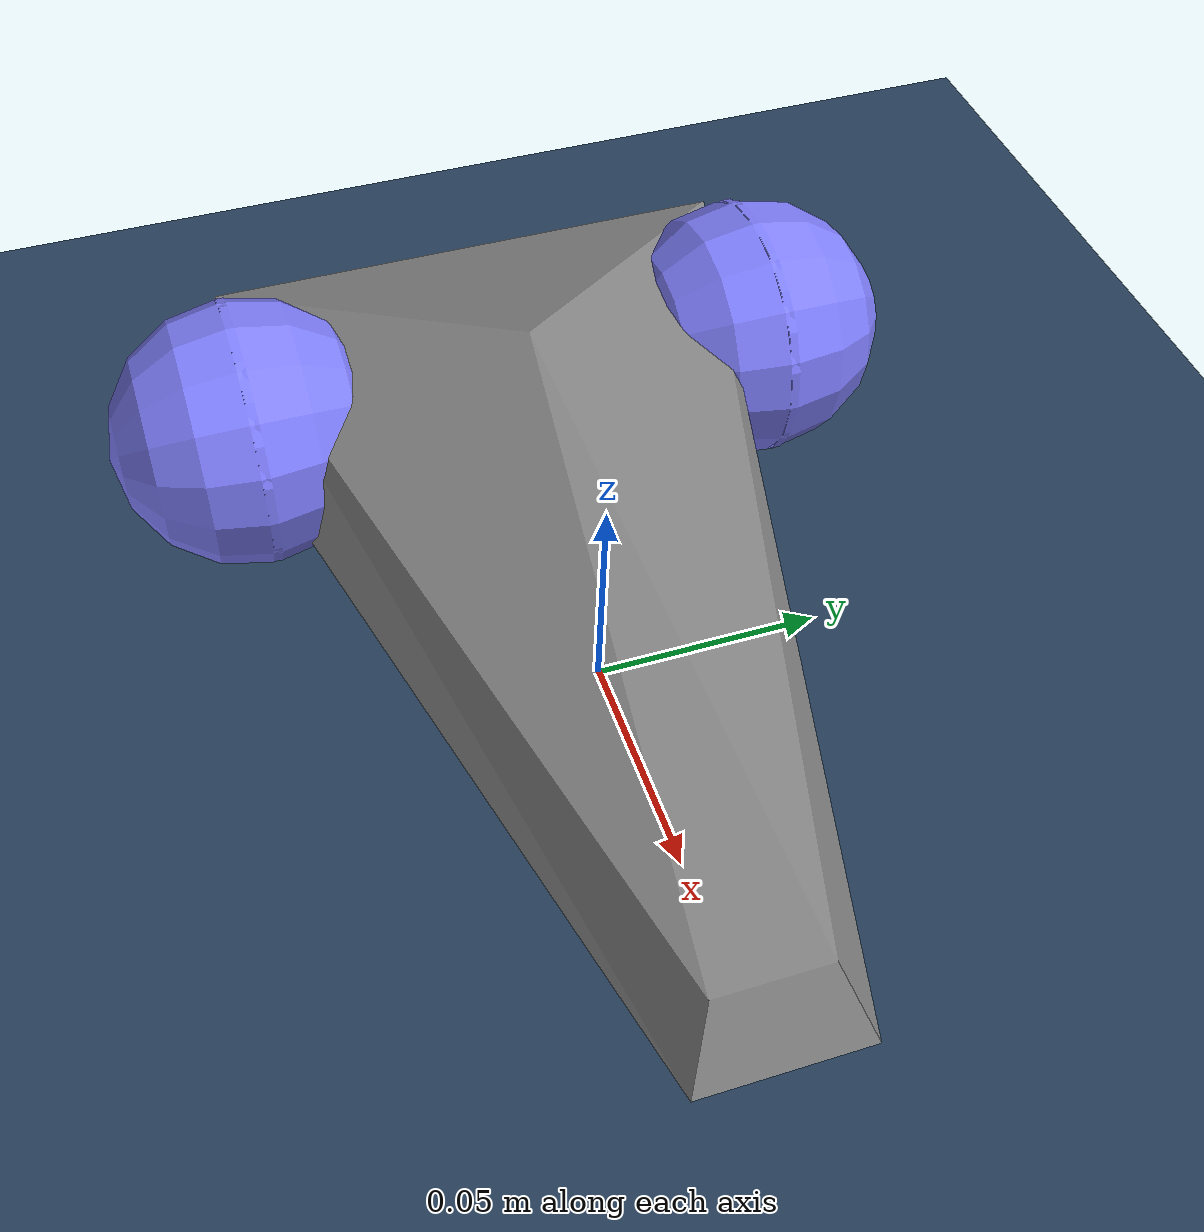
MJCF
<mujoco>
  <compiler autolimits="true"/>
  <option timestep="0.001" iterations="5" ls_iterations="10">
    <flag eulerdamp="disable"/>
  </option>

  <asset>
    <texture name="grid" type="2d" builtin="checker" width="512" height="512" rgb1=".1 .2 .3" rgb2=".2 .3 .4"/>
    <material name="grid" texture="grid" texrepeat="1 1" texuniform="true" reflectance=".2"/>
    <mesh name="chasis" scale=".01 .006 .0015"
      vertex=" 9   2   0
              -10  10  10
               9  -2   0
               10  3  -10
               10 -3  -10
              -8   10 -10
              -10 -10  10
              -8  -10 -10
              -5   0   20"/>
  </asset>

  <default>
    <joint damping=".03" actuatorfrcrange="-0.5 0.5"/>
    <geom type="capsule" condim="3" friction="1.0" solimp=".9 .99 .003" solref=".015 1" contype="0" conaffinity="0"/>
    <default class="wheel">
      <geom size=".03" fromto="0 0 -0.001 0 0 0.001" rgba=".5 .5 1 1"/>
    </default>
  </default>

  <worldbody>
    <geom name="floor" type="plane" size="3 3 .01" material="grid" contype="0" conaffinity="1" condim="3"/>
    <body name="car" pos="0 0 .025">
      <freejoint/>
      <light name="top light" pos="0 0 2" mode="trackcom" diffuse=".4 .4 .4"/>
      <geom name="chasis" type="mesh" mesh="chasis"/>
      <geom name="front_wheel" pos=".08 0 -.015" type="sphere" size=".015" condim="3" friction="0 0 0"/>
      <body name="left wheel" pos="-.07 .06 0" zaxis="0 1 0">
        <joint name="left"/>
        <geom name="left_wheel" class="wheel"/>
      </body>
      <body name="right wheel" pos="-.07 -.06 0" zaxis="0 1 0">
        <joint name="right"/>
        <geom name="right_wheel" class="wheel"/>
      </body>
    </body>
  </worldbody>

  <contact>
    <pair geom1="left_wheel" geom2="floor"/>
    <pair geom1="right_wheel" geom2="floor"/>
    <pair geom1="front_wheel" geom2="floor"/>
  </contact>

  <actuator>
    <motor name="right" joint="right" ctrlrange="-1 1"/>
    <motor name="left" joint="left" ctrlrange="-1 1"/>
  </actuator>
</mujoco>
